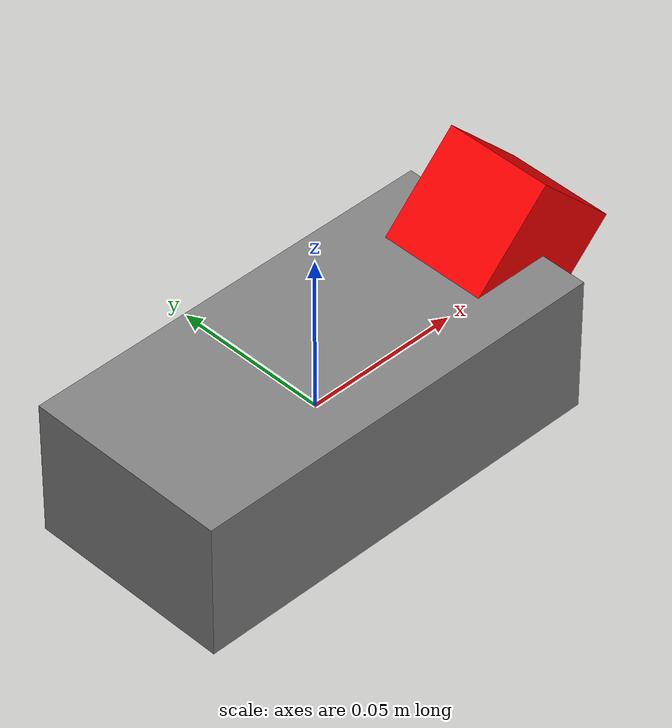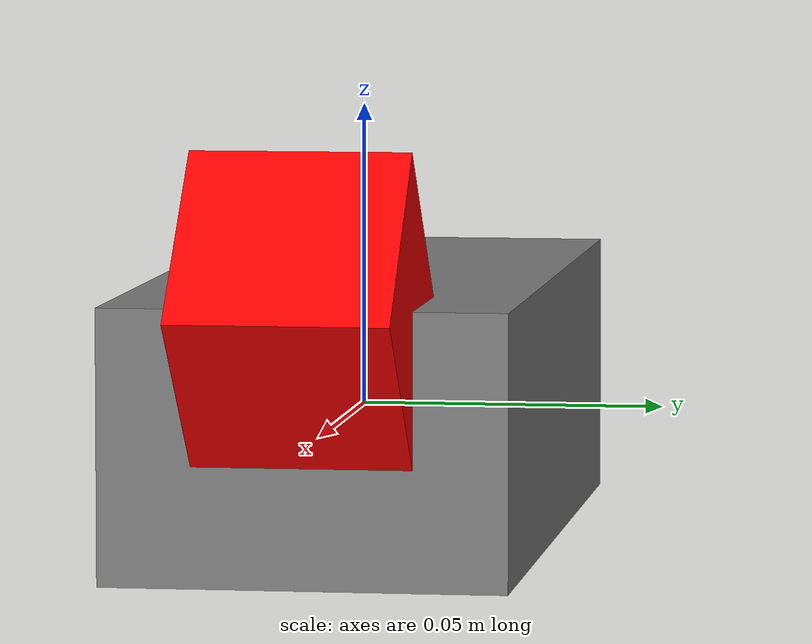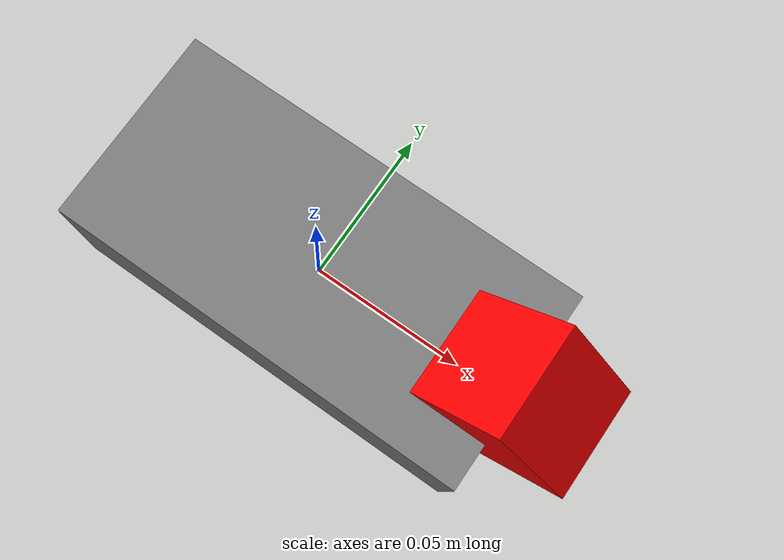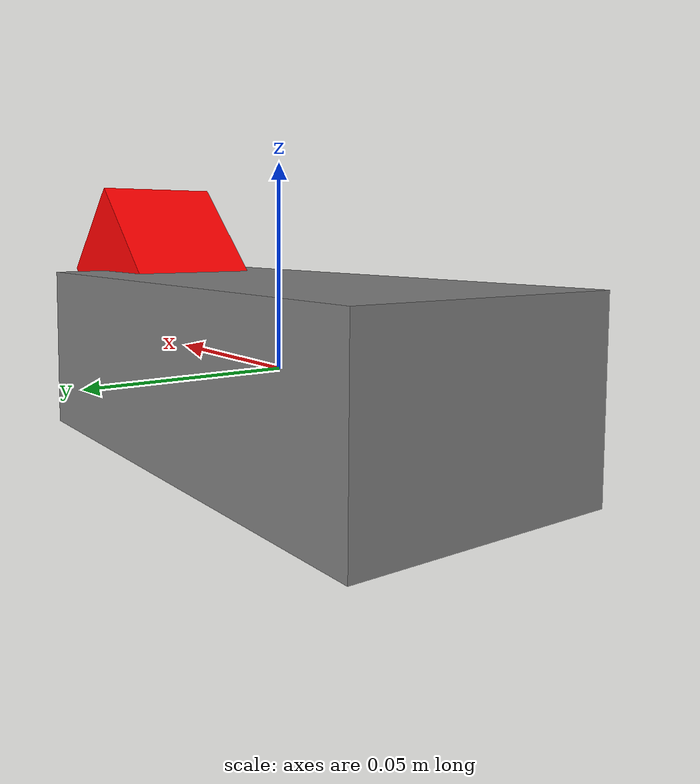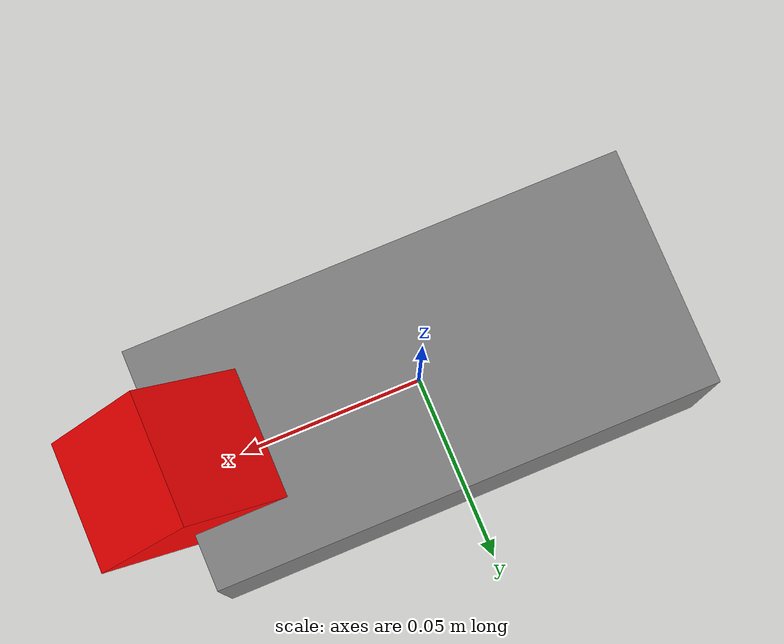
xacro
<?xml version="1.0"?>
<robot name="box" xmlns:xacro="http://ros.org/wiki/xacro">>

  <!-- material definitions. -->
  <material name="red">
    <color rgba="1.0 0.0 0.0 1.0"/>
  </material>

    <!-- material definitions. -->
  <material name="gray">
    <color rgba="0.5 0.5 0.5 1.0"/>
  </material>

  <xacro:property name="pi" value="3.1415" />

  <xacro:property name="body_length" value="0.136" />
  <xacro:property name="body_width" value="0.065" />
  <xacro:property name="body_height" value="0.044" />

  <xacro:property name="body" value="${body_length} ${body_width} ${body_height}"/>
  <xacro:property name="off_ground" value="0, ${body_height/2} 0"/>

  <xacro:property name="camera_size" value="0.035" />
  <xacro:property name="camera_offset_x" value="${body_length/2}"/>
  <xacro:property name="camera_offset_z" value="${body_height/2}"/>

  <!-- masses in kg. -->
  <xacro:property name="body_mass" value="0.249" />

<!-- =========================== Base link and inertia link =========================== -->

  <link name="base_link">
    <origin xyz="0.0 0.0 ${body_height/2}"/> <!-- should mean center of geometry? -->
    <visual>
      <geometry>
        <box size="${body}"/>
      </geometry>
      <material name="gray"/>
    </visual>
     <collision>
      <geometry>
        <box size="${body}"/>
      </geometry>
    </collision>
  </link>

  <joint name="base_to_inertia" type="fixed">
    <parent link="base_link"/>
    <child link="inertia"/>
  </joint>

  <link name="inertia">
      <visual>
      <geometry>
        <box size="${body}"/>
      </geometry>
    </visual>

    <inertial>
      <origin xyz="0.0 0.0 0.0"/> <!-- should mean center of geometry? -->
      <mass value="0.249"/>
      <inertia ixx="0.000423964" ixy="0.0" ixz="0.0" iyy="0.00047146" iyz="0.0" izz="0.00012784075"/>
    </inertial>
  </link>

  <!--  =========================== camera joint, link and gazebo-cam-sensor =========================== -->

  <joint name="gimbal_pitch" type="revolute">
    <axis xyz="0 1 0"/>
    <parent link="base_link"/>
    <child link="gimbal_link"/>
    <origin xyz="${camera_offset_x} 0 ${camera_offset_z}" rpy="0 ${pi/4} 0"/>

    <limit lower="${-(pi/2)}" upper="${pi/2}" effort="30" velocity="1.0"/>

  </joint>

   <link name="gimbal_link">
      <collision>
        <origin xyz="0 0 0" rpy="0 0 0"/>
        <geometry>
          <box size="${camera_size} ${camera_size} ${camera_size}"/>
        </geometry>
      </collision>

      <visual>
        <origin xyz="0 0 0" rpy="0 0 0"/>
        <geometry>
          <box size="${camera_size} ${camera_size} ${camera_size}"/>
        </geometry>
        <material name="red"/>
      </visual>

      <inertial>
        <mass value="1e-5" />
        <origin xyz="0 0 0" rpy="0 0 0"/>
        <inertia ixx="1e-6" ixy="0" ixz="0" iyy="1e-6" iyz="0" izz="1e-6" />
      </inertial>
    </link>

  <gazebo reference="gimbal_link">
    <sensor type="camera" name="camera_front">
      <update_rate>30.0</update_rate>
      <camera name="head">
        <horizontal_fov>1.3962634</horizontal_fov>
        <image>
          <width>800</width>
          <height>800</height>
          <format>R8G8B8</format>
        </image>
        <clip>
          <near>0.02</near>
          <far>300</far>
        </clip>
        <noise>
          <type>gaussian</type>
          <!-- Noise is sampled independently per pixel on each frame.
               That pixel's noise value is added to each of its color
               channels, which at that point lie in the range [0,1]. -->
          <mean>0.0</mean>
          <stddev>0.007</stddev>
        </noise>
      </camera>
      <plugin name="camera_controller" filename="libgazebo_ros_camera.so">
        <alwaysOn>true</alwaysOn>
        <updateRate>0.0</updateRate>
        <cameraName>biosentry/camera_front</cameraName>
        <imageTopicName>image_raw</imageTopicName>
        <cameraInfoTopicName>camera_info</cameraInfoTopicName>
        <frameName>camera_link</frameName>
        <hackBaseline>0.07</hackBaseline>
        <distortionK1>0.0</distortionK1>
        <distortionK2>0.0</distortionK2>
        <distortionK3>0.0</distortionK3>
        <distortionT1>0.0</distortionT1>
        <distortionT2>0.0</distortionT2>
      </plugin>
    </sensor>
  </gazebo>

  <!-- =========================== Gazebo controller for movement =========================== -->
  <gazebo>
    <plugin name="gazebo_ros_control" filename="libgazebo_ros_control.so">
      <robotNamespace>/biosentry</robotNamespace>
    </plugin>
  </gazebo>

</robot>
